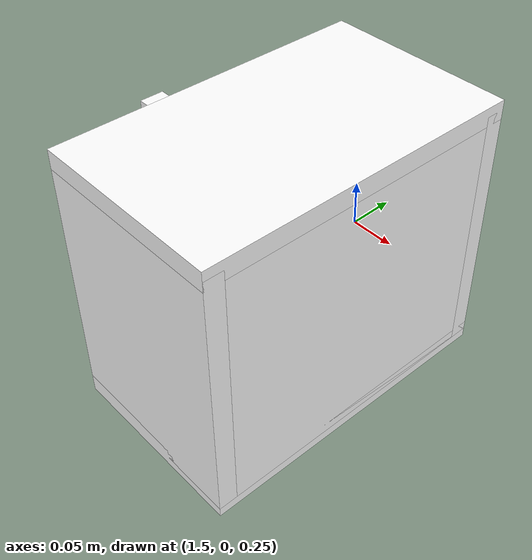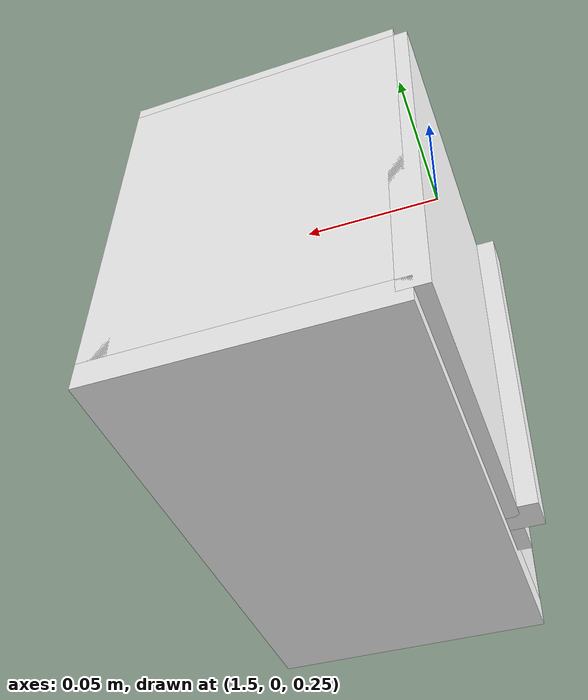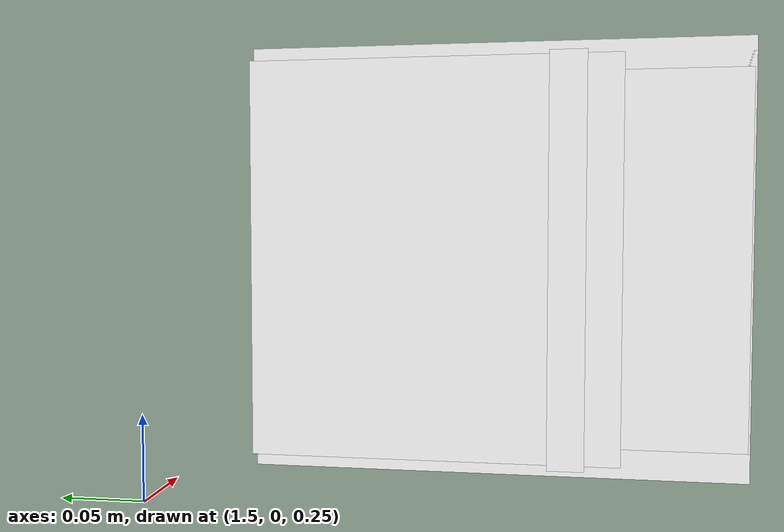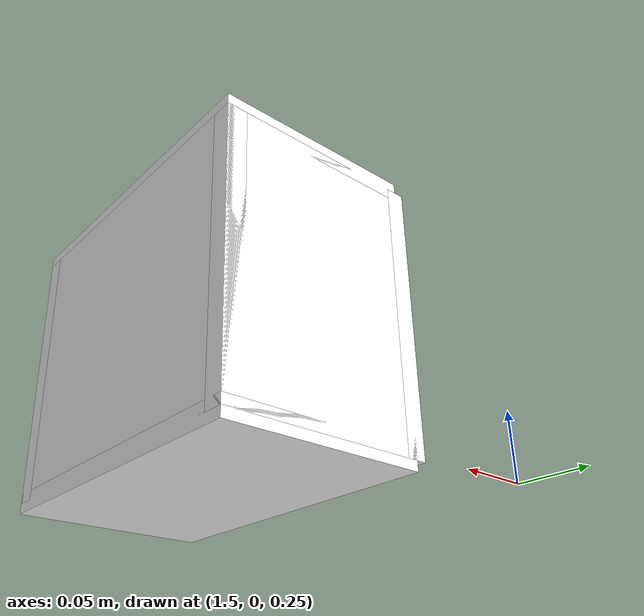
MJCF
<mujoco model="cabinet">
    <compiler angle="radian" eulerseq='zxy' />
    <option gravity = "0 0 0" />
    <option>
        <flag contact = "disable"/>
    </option>
    <statistic	extent="1.0" center="0.0 0.0 0.0"/>
    <visual>
        <map fogstart="3" fogend="5" force="0.1" znear=" 0.100000 " zfar=" 12.000000 "/>
    </visual>
    <size njmax="500" nconmax="100" />
    <actuator>
        <velocity joint="bottom_left_hinge" name="viva_revolution" kv='10'></velocity>
    </actuator>
    <asset>
        <texture builtin="flat" name="tabletex" height="32" width="32" rgb1="1 1 1" type="cube"></texture>
        <texture builtin="flat" name="objtex" height="32" width="32" rgb1="1 1 1" type="cube"></texture>
        <texture builtin="flat" name="handletex" height="32" width="32" rgb1="1 1 1" type="cube"></texture>
        <texture builtin="flat" name="wallpaper" height="32" width="32" rgb1="1 0 0" type="cube"></texture>
        <texture builtin="flat" name="kp" height="32" width="32" rgb1="1 1 1" type="cube"></texture>
        <material name="geomTable" shininess="0.03" specular="0.75" texture="tabletex"></material>
        <material name="geomObj" shininess="0.03" specular="0.75" texture="objtex"></material>
        <material name="geomHandle" shininess="0.03" specular="0.75" texture="handletex"></material>
        <material name="ax" shininess="0.03" specular="0.75" texture="wallpaper"></material>
        <material name="bg" shininess="0.03" specular="0.75" texture="wallpaper"></material>
        <material name="geomKeypad" shininess="0.03" specular="0.75" texture="kp"></material>
    </asset>
    <worldbody>
        <body name="cabinet_bottom" pos= " 1.605936 -0.199545 0.275779 "  quat= " 0.006682 0.000000 0.000000 0.999978" >
            <inertial pos="0 0 0" mass="1" diaginertia="1 1 1" />
            <geom size= " 0.083194 0.138843 0.008239 "  type="box" material="geomObj" name="b"/>
            <body name="cabinet_left" pos= " 0.000000 -0.130604 0.112617 " >
                <inertial pos="0 0 0" mass="1" diaginertia="1 1 1" />
                <geom size= " 0.083194 0.008239 0.112617 "  type="box" material="geomObj" name="c" />
            </body>
            <body name="cabinet_right" pos= " 0.000000 0.130604 0.112617 " >
                <inertial pos="0 0 0" mass="1" diaginertia="1 1 1" />
                <geom size= " 0.083194 0.008239 0.112617 "  type="box" material="geomObj" name="d" />
            </body>
            <body name="cabinet_top" pos= " 0.000000 0.000000 0.225234 " >
                <inertial pos="0 0 0" mass="1" diaginertia="1 1 1" />
                <geom size= " 0.083194 0.138843 0.008239 "  type="box" material="geomObj" name="e"/>
            </body>
            <body name="cabinet_back" pos= " -0.074955 0.000000 0.112617 "  >
                <inertial pos="0 0 0" mass="1" diaginertia="1 1 1" />
                <geom size= " 0.008239 0.138843 0.112617 "  type="box" material="geomObj" name="f" />
            </body>
            <body name="cabinet_keypad" pos= " 0.008239 0.103132 0.112617 " >
                <inertial pos="0 0 0" mass="1" diaginertia="1 1 1" />
                <geom size= " 0.074955 0.034711 0.104378 "  type="box" material="geomKeypad" name="keypizzlemynizzle" />
            </body>
            <body name="cabinet_left_hinge" pos= " 0.083194 -0.138843 0.112617 " >
                <inertial pos= " 0.000000 0.104132 0.000000 "  mass="1" diaginertia="1 1 1" />
                <joint name="bottom_left_hinge" type="hinge" pos="0 0 0" axis="0 0 1" limited="true" range= "-2.3 0"  />
                <geom size= " 0.008239 0.104132 0.112617 "  pos= " 0.000000 0.104132 0.000000 "  type="box" material="geomObj" name="g"/>
                <body name="handle_link" pos= " 0.010000 0.178265 0.000000 " >
                    <inertial pos="0 0 0" mass="1" diaginertia="1 1 1" />
                    <geom size= " 0.010000 0.010000 0.112617 "  type="box" material="geomHandle" name="h"/>
                </body>
            </body>
        </body>
        <body name="external_camera_body_0" pos="0.0 0 0.00" >
            <camera euler="-1.57 1.57 0.0" fovy=" 54.280851 " name="external_camera_0" pos="0.0 0 0"></camera>
            <inertial pos= " 0.00 0.0 0.000000 " mass="1" diaginertia="1 1 1" />
            <joint name="cam_j" pos="0.0 0 0" axis = "1 0 0" type="free" />
        </body>
    </worldbody>
</mujoco>
